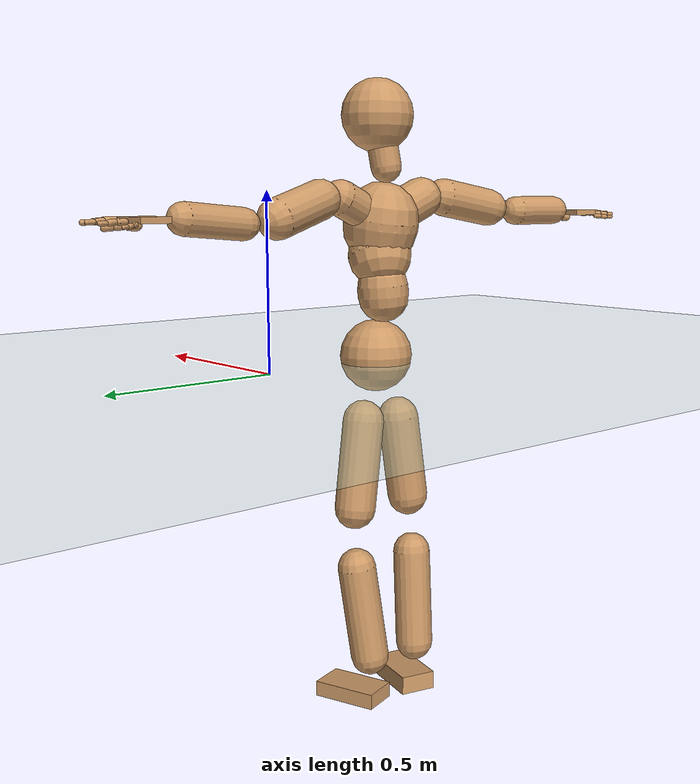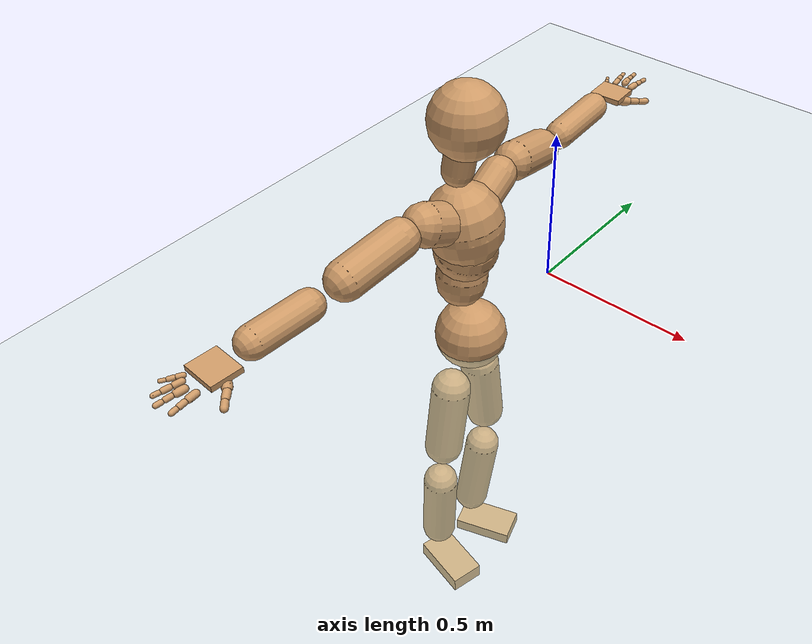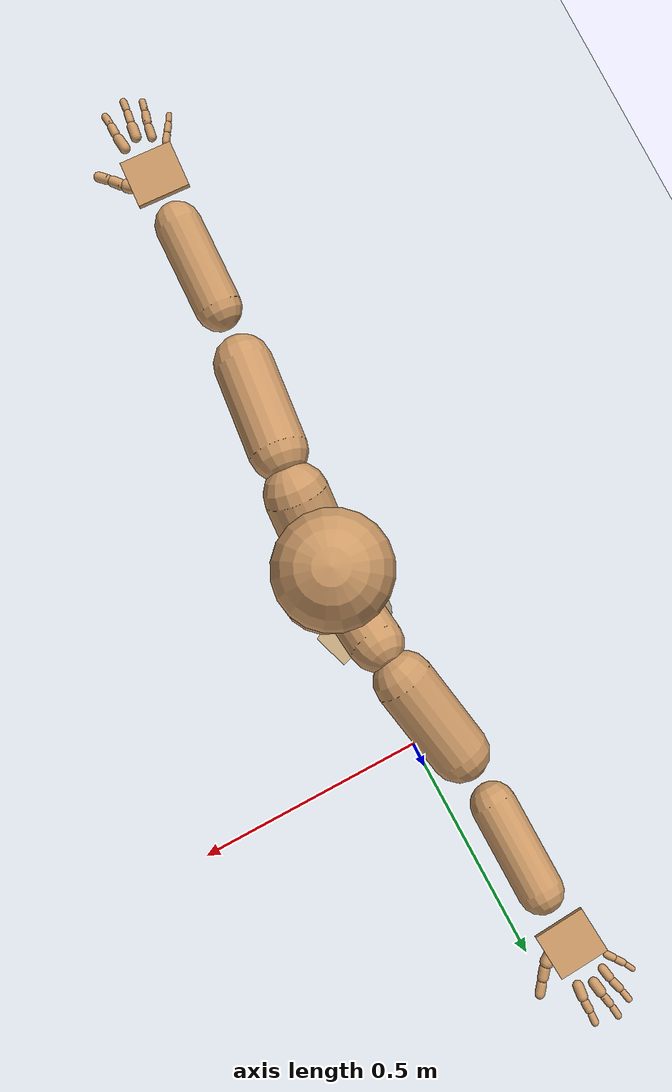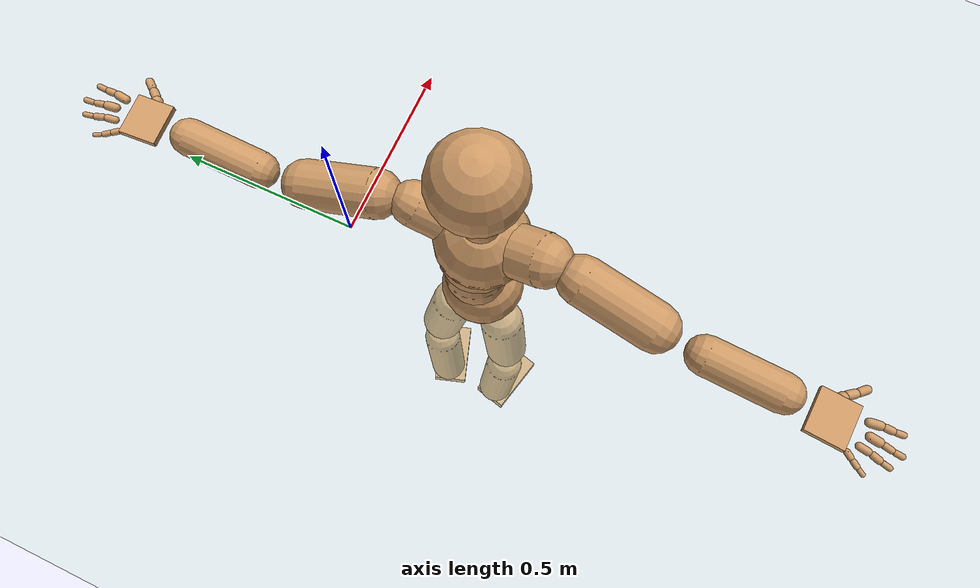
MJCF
<mujoco model="humanoid">
  <compiler coordinate="local" angle="radian"/>
  <default>
    <joint damping="0.0" armature="0.01" stiffness="0.0" limited="true"/>
    <geom conaffinity="1" condim="3" contype="7" margin="0.001" rgba="0.8 0.6 .4 1"/>
  </default>
  <asset>
    <texture type="skybox" builtin="gradient" rgb1=".4 .5 .6" rgb2="0 0 0" width="100" height="100"/>
    <texture builtin="flat" height="1278" mark="cross" markrgb="1 1 1" name="texgeom" random="0.01" rgb1="0.8 0.6 0.4" rgb2="0.8 0.6 0.4" type="cube" width="127"/>
    <texture builtin="checker" height="100" name="texplane" rgb1="0 0 0" rgb2="0.8 0.8 0.8" type="2d" width="100"/>
    <material name="MatPlane" reflectance="0.5" shininess="1" specular="1" texrepeat="60 60" texture="texplane"/>
    <material name="geom" texture="texgeom" texuniform="true"/>
  </asset>
  <worldbody>
    <light cutoff="100" diffuse="1 1 1" dir="-0 0 -1.3" directional="true" exponent="1" pos="0 0 1.3" specular=".1 .1 .1"/>
    <geom conaffinity="1" condim="3" name="floor" pos="0 0 0" rgba="0.8 0.9 0.8 1" size="100 100 .2" type="plane" material="MatPlane"/>
    <body name="Pelvis" pos="0.0012 -0.3872 0.0188">
      <freejoint name="Pelvis"/>
      <geom type="sphere" contype="1" conaffinity="1" density="500" size="0.1069" pos="0.0000 0.0000 0.0000" name="Pelvis"/>
      <body name="L_Hip" pos="-0.0232 0.0587 -0.0991">
        <joint name="L_Hip_x" type="hinge" pos="0 0 0" axis="1 0 0" stiffness="800" damping="80" armature="0.02" range="-180.0000 180.0000"/>
        <joint name="L_Hip_y" type="hinge" pos="0 0 0" axis="0 1 0" stiffness="800" damping="80" armature="0.02" range="-180.0000 180.0000"/>
        <joint name="L_Hip_z" type="hinge" pos="0 0 0" axis="0 0 1" stiffness="800" damping="80" armature="0.02" range="-180.0000 180.0000"/>
        <geom type="capsule" contype="1" conaffinity="1" density="500" fromto="-0.0024 0.0131 -0.0864 -0.0097 0.0526 -0.3455" size="0.0607" name="L_Hip"/>
        <body name="L_Knee" pos="-0.0121 0.0657 -0.4319">
          <joint name="L_Knee_x" type="hinge" pos="0 0 0" axis="1 0 0" stiffness="800" damping="80" armature="0.02" range="-180.0000 180.0000"/>
          <joint name="L_Knee_y" type="hinge" pos="0 0 0" axis="0 1 0" stiffness="800" damping="80" armature="0.02" range="-180.0000 180.0000"/>
          <joint name="L_Knee_z" type="hinge" pos="0 0 0" axis="0 0 1" stiffness="800" damping="80" armature="0.02" range="-180.0000 180.0000"/>
          <geom type="capsule" contype="1" conaffinity="1" density="500" fromto="-0.0087 -0.0093 -0.0926 -0.0347 -0.0372 -0.3702" size="0.0566" name="L_Knee"/>
          <body name="L_Ankle" pos="-0.0434 -0.0465 -0.4628">
            <joint name="L_Ankle_x" type="hinge" pos="0 0 0" axis="1 0 0" stiffness="800" damping="80" armature="0.02" range="-180.0000 180.0000"/>
            <joint name="L_Ankle_y" type="hinge" pos="0 0 0" axis="0 1 0" stiffness="800" damping="80" armature="0.02" range="-180.0000 180.0000"/>
            <joint name="L_Ankle_z" type="hinge" pos="0 0 0" axis="0 0 1" stiffness="800" damping="80" armature="0.02" range="-180.0000 180.0000"/>
            <geom type="box" contype="1" conaffinity="1" density="500" pos="0.0721 0.0234 -0.0340" size="0.0984 0.0545 0.0229" quat="0.9877 0.0000 0.0000 0.1563" name="L_Ankle"/>
            <body name="L_Toe" pos="0.1441 0.0468 -0.068">
              <joint name="L_Toe_x" type="hinge" pos="0 0 0" axis="1 0 0" stiffness="500" damping="50" armature="0.02" range="-180.0000 180.0000"/>
              <joint name="L_Toe_y" type="hinge" pos="0 0 0" axis="0 1 0" stiffness="500" damping="50" armature="0.02" range="-180.0000 180.0000"/>
              <joint name="L_Toe_z" type="hinge" pos="0 0 0" axis="0 0 1" stiffness="500" damping="50" armature="0.02" range="-180.0000 180.0000"/>
              <geom type="box" contype="1" conaffinity="1" density="500" pos="0.0000 0.0000 0.0331" size="0.0011 0.0026 0.0011" quat="0.9871 0.0000 0.0000 0.1604" name="L_Toe"/>
            </body>
          </body>
        </body>
      </body>
      <body name="R_Hip" pos="-0.0172 -0.0602 -0.1098">
        <joint name="R_Hip_x" type="hinge" pos="0 0 0" axis="1 0 0" stiffness="800" damping="80" armature="0.02" range="-180.0000 180.0000"/>
        <joint name="R_Hip_y" type="hinge" pos="0 0 0" axis="0 1 0" stiffness="800" damping="80" armature="0.02" range="-180.0000 180.0000"/>
        <joint name="R_Hip_z" type="hinge" pos="0 0 0" axis="0 0 1" stiffness="800" damping="80" armature="0.02" range="-180.0000 180.0000"/>
        <geom type="capsule" contype="1" conaffinity="1" density="500" fromto="-0.0039 -0.0098 -0.0827 -0.0154 -0.0392 -0.3308" size="0.0603" name="R_Hip"/>
        <body name="R_Knee" pos="-0.0193 -0.0491 -0.4135">
          <joint name="R_Knee_x" type="hinge" pos="0 0 0" axis="1 0 0" stiffness="800" damping="80" armature="0.02" range="-180.0000 180.0000"/>
          <joint name="R_Knee_y" type="hinge" pos="0 0 0" axis="0 1 0" stiffness="800" damping="80" armature="0.02" range="-180.0000 180.0000"/>
          <joint name="R_Knee_z" type="hinge" pos="0 0 0" axis="0 0 1" stiffness="800" damping="80" armature="0.02" range="-180.0000 180.0000"/>
          <geom type="capsule" contype="1" conaffinity="1" density="500" fromto="-0.0083 0.0035 -0.0957 -0.0332 0.0138 -0.3826" size="0.0562" name="R_Knee"/>
          <body name="R_Ankle" pos="-0.0415 0.0173 -0.4783">
            <joint name="R_Ankle_x" type="hinge" pos="0 0 0" axis="1 0 0" stiffness="800" damping="80" armature="0.02" range="-180.0000 180.0000"/>
            <joint name="R_Ankle_y" type="hinge" pos="0 0 0" axis="0 1 0" stiffness="800" damping="80" armature="0.02" range="-180.0000 180.0000"/>
            <joint name="R_Ankle_z" type="hinge" pos="0 0 0" axis="0 0 1" stiffness="800" damping="80" armature="0.02" range="-180.0000 180.0000"/>
            <geom type="box" contype="1" conaffinity="1" density="500" pos="0.0754 -0.0187 -0.0332" size="0.0984 0.0545 0.0276" quat="0.9926 0.0000 0.0000 -0.1213" name="R_Ankle"/>
            <body name="R_Toe" pos="0.1508 -0.0374 -0.0663">
              <joint name="R_Toe_x" type="hinge" pos="0 0 0" axis="1 0 0" stiffness="500" damping="50" armature="0.02" range="-180.0000 180.0000"/>
              <joint name="R_Toe_y" type="hinge" pos="0 0 0" axis="0 1 0" stiffness="500" damping="50" armature="0.02" range="-180.0000 180.0000"/>
              <joint name="R_Toe_z" type="hinge" pos="0 0 0" axis="0 0 1" stiffness="500" damping="50" armature="0.02" range="-180.0000 180.0000"/>
              <geom type="box" contype="1" conaffinity="1" density="500" pos="0.0000 0.0000 0.0276" size="0.001 0.0026 0.0011" quat="0.9935 0.0000 0.0000 -0.1137" name="R_Toe"/>
            </body>
          </body>
        </body>
      </body>
      <body name="Torso" pos="-0.0397 -0.0013 0.1154">
        <joint name="Torso_x" type="hinge" pos="0 0 0" axis="1 0 0" stiffness="1000" damping="100" armature="0.02" range="-180.0000 180.0000"/>
        <joint name="Torso_y" type="hinge" pos="0 0 0" axis="0 1 0" stiffness="1000" damping="100" armature="0.02" range="-180.0000 180.0000"/>
        <joint name="Torso_z" type="hinge" pos="0 0 0" axis="0 0 1" stiffness="1000" damping="100" armature="0.02" range="-180.0000 180.0000"/>
        <geom type="capsule" contype="1" conaffinity="1" density="500" fromto="0.0034 0.0067 0.0934 0.0023 0.0045 0.0623" size="0.0747" name="Torso"/>
        <body name="Spine" pos="0.0057 0.0112 0.1557">
          <joint name="Spine_x" type="hinge" pos="0 0 0" axis="1 0 0" stiffness="1000" damping="100" armature="0.02" range="-180.0000 180.0000"/>
          <joint name="Spine_y" type="hinge" pos="0 0 0" axis="0 1 0" stiffness="1000" damping="100" armature="0.02" range="-180.0000 180.0000"/>
          <joint name="Spine_z" type="hinge" pos="0 0 0" axis="0 0 1" stiffness="1000" damping="100" armature="0.02" range="-180.0000 180.0000"/>
          <geom type="capsule" contype="1" conaffinity="1" density="500" fromto="0.0143 -0.0060 0.0354 0.0095 -0.0040 0.0236" size="0.0924" name="Spine"/>
          <body name="Chest" pos="0.0239 -0.01 0.0589">
            <joint name="Chest_x" type="hinge" pos="0 0 0" axis="1 0 0" stiffness="1000" damping="100" armature="0.02" range="-180.0000 180.0000"/>
            <joint name="Chest_y" type="hinge" pos="0 0 0" axis="0 1 0" stiffness="1000" damping="100" armature="0.02" range="-180.0000 180.0000"/>
            <joint name="Chest_z" type="hinge" pos="0 0 0" axis="0 0 1" stiffness="1000" damping="100" armature="0.02" range="-180.0000 180.0000"/>
            <geom type="capsule" contype="1" conaffinity="1" density="500" fromto="-0.0111 -0.0027 0.0693 -0.0074 -0.0018 0.0462" size="0.1097" name="Chest"/>
            <body name="Neck" pos="-0.0339 -0.0095 0.182">
              <joint name="Neck_x" type="hinge" pos="0 0 0" axis="1 0 0" stiffness="500" damping="50" armature="0.02" range="-180.0000 180.0000"/>
              <joint name="Neck_y" type="hinge" pos="0 0 0" axis="0 1 0" stiffness="500" damping="50" armature="0.02" range="-180.0000 180.0000"/>
              <joint name="Neck_z" type="hinge" pos="0 0 0" axis="0 0 1" stiffness="500" damping="50" armature="0.02" range="-180.0000 180.0000"/>
              <geom type="capsule" contype="1" conaffinity="1" density="500" fromto="0.0042 0.0045 0.0361 0.0166 0.0181 0.1445" size="0.0444" name="Neck"/>
              <body name="Head" pos="0.0208 0.0226 0.1806">
                <joint name="Head_x" type="hinge" pos="0 0 0" axis="1 0 0" stiffness="500" damping="50" armature="0.02" range="-180.0000 180.0000"/>
                <joint name="Head_y" type="hinge" pos="0 0 0" axis="0 1 0" stiffness="500" damping="50" armature="0.02" range="-180.0000 180.0000"/>
                <joint name="Head_z" type="hinge" pos="0 0 0" axis="0 0 1" stiffness="500" damping="50" armature="0.02" range="-180.0000 180.0000"/>
                <geom type="sphere" contype="1" conaffinity="1" density="500" size="0.1041" pos="0.0000 0.0000 0.0000" name="Head"/>
              </body>
            </body>
            <body name="L_Thorax" pos="-0.0094 0.0427 0.0819">
              <joint name="L_Thorax_x" type="hinge" pos="0 0 0" axis="1 0 0" stiffness="500" damping="50" armature="0.02" range="-180.0000 180.0000"/>
              <joint name="L_Thorax_y" type="hinge" pos="0 0 0" axis="0 1 0" stiffness="500" damping="50" armature="0.02" range="-180.0000 180.0000"/>
              <joint name="L_Thorax_z" type="hinge" pos="0 0 0" axis="0 0 1" stiffness="500" damping="50" armature="0.02" range="-180.0000 180.0000"/>
              <geom type="capsule" contype="1" conaffinity="1" density="500" fromto="-0.0026 0.0281 0.0122 -0.0104 0.1125 0.0487" size="0.0518" name="L_Thorax"/>
              <body name="L_Shoulder" pos="-0.013 0.1406 0.0609">
                <joint name="L_Shoulder_x" type="hinge" pos="0 0 0" axis="1 0 0" stiffness="500" damping="50" armature="0.02" range="-180.0000 180.0000"/>
                <joint name="L_Shoulder_y" type="hinge" pos="0 0 0" axis="0 1 0" stiffness="500" damping="50" armature="0.02" range="-180.0000 180.0000"/>
                <joint name="L_Shoulder_z" type="hinge" pos="0 0 0" axis="0 0 1" stiffness="500" damping="50" armature="0.02" range="-180.0000 180.0000"/>
                <geom type="capsule" contype="1" conaffinity="1" density="500" fromto="-0.0093 0.0549 -0.0164 -0.0371 0.2196 -0.0657" size="0.0566" name="L_Shoulder"/>
                <body name="L_Elbow" pos="-0.0464 0.2745 -0.0822">
                  <joint name="L_Elbow_x" type="hinge" pos="0 0 0" axis="1 0 0" stiffness="500" damping="50" armature="0.02" range="-720.0000 720.0000"/>
                  <joint name="L_Elbow_y" type="hinge" pos="0 0 0" axis="0 1 0" stiffness="500" damping="50" armature="0.02" range="-720.0000 720.0000"/>
                  <joint name="L_Elbow_z" type="hinge" pos="0 0 0" axis="0 0 1" stiffness="500" damping="50" armature="0.02" range="-720.0000 720.0000"/>
                  <geom type="capsule" contype="1" conaffinity="1" density="500" fromto="-0.0002 0.0591 0.0052 -0.0006 0.2362 0.0209" size="0.043" name="L_Elbow"/>
                  <body name="L_Wrist" pos="-0.0008 0.2953 0.0261">
                    <joint name="L_Wrist_x" type="hinge" pos="0 0 0" axis="1 0 0" stiffness="300" damping="30" armature="0.02" range="-180.0000 180.0000"/>
                    <joint name="L_Wrist_y" type="hinge" pos="0 0 0" axis="0 1 0" stiffness="300" damping="30" armature="0.02" range="-180.0000 180.0000"/>
                    <joint name="L_Wrist_z" type="hinge" pos="0 0 0" axis="0 0 1" stiffness="300" damping="30" armature="0.02" range="-180.0000 180.0000"/>
                    <geom type="box" contype="1" conaffinity="1" density="500" pos="-0.0033 0.0496 -0.0061" size="0.0442 0.0493 0.0082" quat="0.7299 0.0000 0.0000 -0.6836" name="L_Wrist"/>
                    <body name="L_Index1" pos="0.0218 0.1159 -0.0089">
                      <joint name="L_Index1_x" type="hinge" pos="0 0 0" axis="1 0 0" stiffness="100" damping="10" armature="0.02" range="-180.0000 180.0000"/>
                      <joint name="L_Index1_y" type="hinge" pos="0 0 0" axis="0 1 0" stiffness="100" damping="10" armature="0.02" range="-180.0000 180.0000"/>
                      <joint name="L_Index1_z" type="hinge" pos="0 0 0" axis="0 0 1" stiffness="100" damping="10" armature="0.02" range="-180.0000 180.0000"/>
                      <geom type="capsule" contype="1" conaffinity="1" density="500" fromto="0.0007 0.0069 0.0003 0.0030 0.0278 0.0014" size="0.0099" name="L_Index1"/>
                      <body name="L_Index2" pos="0.0037 0.0347 0.0017">
                        <joint name="L_Index2_x" type="hinge" pos="0 0 0" axis="1 0 0" stiffness="100" damping="10" armature="0.02" range="-180.0000 180.0000"/>
                        <joint name="L_Index2_y" type="hinge" pos="0 0 0" axis="0 1 0" stiffness="100" damping="10" armature="0.02" range="-180.0000 180.0000"/>
                        <joint name="L_Index2_z" type="hinge" pos="0 0 0" axis="0 0 1" stiffness="100" damping="10" armature="0.02" range="-180.0000 180.0000"/>
                        <geom type="capsule" contype="1" conaffinity="1" density="500" fromto="-0.0000 0.0049 -0.0005 -0.0001 0.0196 -0.0021" size="0.0081" name="L_Index2"/>
                        <body name="L_Index3" pos="-0.0001 0.0245 -0.0027">
                          <joint name="L_Index3_x" type="hinge" pos="0 0 0" axis="1 0 0" stiffness="100" damping="10" armature="0.02" range="-180.0000 180.0000"/>
                          <joint name="L_Index3_y" type="hinge" pos="0 0 0" axis="0 1 0" stiffness="100" damping="10" armature="0.02" range="-180.0000 180.0000"/>
                          <joint name="L_Index3_z" type="hinge" pos="0 0 0" axis="0 0 1" stiffness="100" damping="10" armature="0.02" range="-180.0000 180.0000"/>
                          <geom type="capsule" contype="1" conaffinity="1" density="500" fromto="0.0004 0.0053 -0.0001 0.0015 0.0212 -0.0005" size="0.0069" name="L_Index3"/>
                        </body>
                      </body>
                    </body>
                    <body name="L_Middle1" pos="-0.0045 0.1244 -0.0061">
                      <joint name="L_Middle1_x" type="hinge" pos="0 0 0" axis="1 0 0" stiffness="100" damping="10" armature="0.02" range="-180.0000 180.0000"/>
                      <joint name="L_Middle1_y" type="hinge" pos="0 0 0" axis="0 1 0" stiffness="100" damping="10" armature="0.02" range="-180.0000 180.0000"/>
                      <joint name="L_Middle1_z" type="hinge" pos="0 0 0" axis="0 0 1" stiffness="100" damping="10" armature="0.02" range="-180.0000 180.0000"/>
                      <geom type="capsule" contype="1" conaffinity="1" density="500" fromto="-0.0010 0.0066 0.0001 -0.0039 0.0265 0.0003" size="0.0101" name="L_Middle1"/>
                      <body name="L_Middle2" pos="-0.0048 0.0331 0.0004">
                        <joint name="L_Middle2_x" type="hinge" pos="0 0 0" axis="1 0 0" stiffness="100" damping="10" armature="0.02" range="-180.0000 180.0000"/>
                        <joint name="L_Middle2_y" type="hinge" pos="0 0 0" axis="0 1 0" stiffness="100" damping="10" armature="0.02" range="-180.0000 180.0000"/>
                        <joint name="L_Middle2_z" type="hinge" pos="0 0 0" axis="0 0 1" stiffness="100" damping="10" armature="0.02" range="-180.0000 180.0000"/>
                        <geom type="capsule" contype="1" conaffinity="1" density="500" fromto="-0.0009 0.0051 -0.0005 -0.0037 0.0204 -0.0021" size="0.0075" name="L_Middle2"/>
                        <body name="L_Middle3" pos="-0.0046 0.0254 -0.0026">
                          <joint name="L_Middle3_x" type="hinge" pos="0 0 0" axis="1 0 0" stiffness="100" damping="10" armature="0.02" range="-180.0000 180.0000"/>
                          <joint name="L_Middle3_y" type="hinge" pos="0 0 0" axis="0 1 0" stiffness="100" damping="10" armature="0.02" range="-180.0000 180.0000"/>
                          <joint name="L_Middle3_z" type="hinge" pos="0 0 0" axis="0 0 1" stiffness="100" damping="10" armature="0.02" range="-180.0000 180.0000"/>
                          <geom type="capsule" contype="1" conaffinity="1" density="500" fromto="-0.0005 0.0055 -0.0001 -0.0021 0.0220 -0.0005" size="0.0066" name="L_Middle3"/>
                        </body>
                      </body>
                    </body>
                    <body name="L_Pinky1" pos="-0.0484 0.0969 -0.0156">
                      <joint name="L_Pinky1_x" type="hinge" pos="0 0 0" axis="1 0 0" stiffness="100" damping="10" armature="0.02" range="-180.0000 180.0000"/>
                      <joint name="L_Pinky1_y" type="hinge" pos="0 0 0" axis="0 1 0" stiffness="100" damping="10" armature="0.02" range="-180.0000 180.0000"/>
                      <joint name="L_Pinky1_z" type="hinge" pos="0 0 0" axis="0 0 1" stiffness="100" damping="10" armature="0.02" range="-180.0000 180.0000"/>
                      <geom type="capsule" contype="1" conaffinity="1" density="500" fromto="-0.0025 0.0035 -0.0004 -0.0099 0.0141 -0.0014" size="0.0071" name="L_Pinky1"/>
                      <body name="L_Pinky2" pos="-0.0124 0.0176 -0.0018">
                        <joint name="L_Pinky2_x" type="hinge" pos="0 0 0" axis="1 0 0" stiffness="100" damping="10" armature="0.02" range="-180.0000 180.0000"/>
                        <joint name="L_Pinky2_y" type="hinge" pos="0 0 0" axis="0 1 0" stiffness="100" damping="10" armature="0.02" range="-180.0000 180.0000"/>
                        <joint name="L_Pinky2_z" type="hinge" pos="0 0 0" axis="0 0 1" stiffness="100" damping="10" armature="0.02" range="-180.0000 180.0000"/>
                        <geom type="capsule" contype="1" conaffinity="1" density="500" fromto="-0.0023 0.0034 -0.0004 -0.0093 0.0137 -0.0017" size="0.0067" name="L_Pinky2"/>
                        <body name="L_Pinky3" pos="-0.0116 0.0172 -0.0021">
                          <joint name="L_Pinky3_x" type="hinge" pos="0 0 0" axis="1 0 0" stiffness="100" damping="10" armature="0.02" range="-180.0000 180.0000"/>
                          <joint name="L_Pinky3_y" type="hinge" pos="0 0 0" axis="0 1 0" stiffness="100" damping="10" armature="0.02" range="-180.0000 180.0000"/>
                          <joint name="L_Pinky3_z" type="hinge" pos="0 0 0" axis="0 0 1" stiffness="100" damping="10" armature="0.02" range="-180.0000 180.0000"/>
                          <geom type="capsule" contype="1" conaffinity="1" density="500" fromto="-0.0019 0.0038 -0.0000 -0.0077 0.0153 -0.0001" size="0.0051" name="L_Pinky3"/>
                        </body>
                      </body>
                    </body>
                    <body name="L_Ring1" pos="-0.0305 0.1115 -0.0094">
                      <joint name="L_Ring1_x" type="hinge" pos="0 0 0" axis="1 0 0" stiffness="100" damping="10" armature="0.02" range="-180.0000 180.0000"/>
                      <joint name="L_Ring1_y" type="hinge" pos="0 0 0" axis="0 1 0" stiffness="100" damping="10" armature="0.02" range="-180.0000 180.0000"/>
                      <joint name="L_Ring1_z" type="hinge" pos="0 0 0" axis="0 0 1" stiffness="100" damping="10" armature="0.02" range="-180.0000 180.0000"/>
                      <geom type="capsule" contype="1" conaffinity="1" density="500" fromto="-0.0011 0.0062 0.0002 -0.0043 0.0248 0.0007" size="0.0085" name="L_Ring1"/>
                      <body name="L_Ring2" pos="-0.0054 0.031 0.0008">
                        <joint name="L_Ring2_x" type="hinge" pos="0 0 0" axis="1 0 0" stiffness="100" damping="10" armature="0.02" range="-180.0000 180.0000"/>
                        <joint name="L_Ring2_y" type="hinge" pos="0 0 0" axis="0 1 0" stiffness="100" damping="10" armature="0.02" range="-180.0000 180.0000"/>
                        <joint name="L_Ring2_z" type="hinge" pos="0 0 0" axis="0 0 1" stiffness="100" damping="10" armature="0.02" range="-180.0000 180.0000"/>
                        <geom type="capsule" contype="1" conaffinity="1" density="500" fromto="-0.0014 0.0050 -0.0005 -0.0058 0.0200 -0.0019" size="0.008" name="L_Ring2"/>
                        <body name="L_Ring3" pos="-0.0072 0.025 -0.0024">
                          <joint name="L_Ring3_x" type="hinge" pos="0 0 0" axis="1 0 0" stiffness="100" damping="10" armature="0.02" range="-180.0000 180.0000"/>
                          <joint name="L_Ring3_y" type="hinge" pos="0 0 0" axis="0 1 0" stiffness="100" damping="10" armature="0.02" range="-180.0000 180.0000"/>
                          <joint name="L_Ring3_z" type="hinge" pos="0 0 0" axis="0 0 1" stiffness="100" damping="10" armature="0.02" range="-180.0000 180.0000"/>
                          <geom type="capsule" contype="1" conaffinity="1" density="500" fromto="-0.0010 0.0054 -0.0001 -0.0042 0.0216 -0.0003" size="0.0062" name="L_Ring3"/>
                        </body>
                      </body>
                    </body>
                    <body name="L_Thumb1" pos="0.029 0.0471 -0.0207">
                      <joint name="L_Thumb1_x" type="hinge" pos="0 0 0" axis="1 0 0" stiffness="100" damping="10" armature="0.02" range="-180.0000 180.0000"/>
                      <joint name="L_Thumb1_y" type="hinge" pos="0 0 0" axis="0 1 0" stiffness="100" damping="10" armature="0.02" range="-180.0000 180.0000"/>
                      <joint name="L_Thumb1_z" type="hinge" pos="0 0 0" axis="0 0 1" stiffness="100" damping="10" armature="0.02" range="-180.0000 180.0000"/>
                      <geom type="capsule" contype="1" conaffinity="1" density="500" fromto="0.0057 0.0037 0.0003 0.0226 0.0149 0.0012" size="0.0133" name="L_Thumb1"/>
                      <body name="L_Thumb2" pos="0.0283 0.0186 0.0016">
                        <joint name="L_Thumb2_x" type="hinge" pos="0 0 0" axis="1 0 0" stiffness="100" damping="10" armature="0.02" range="-180.0000 180.0000"/>
                        <joint name="L_Thumb2_y" type="hinge" pos="0 0 0" axis="0 1 0" stiffness="100" damping="10" armature="0.02" range="-180.0000 180.0000"/>
                        <joint name="L_Thumb2_z" type="hinge" pos="0 0 0" axis="0 0 1" stiffness="100" damping="10" armature="0.02" range="-180.0000 180.0000"/>
                        <geom type="capsule" contype="1" conaffinity="1" density="500" fromto="0.0035 0.0045 -0.0009 0.0141 0.0181 -0.0036" size="0.0104" name="L_Thumb2"/>
                        <body name="L_Thumb3" pos="0.0177 0.0226 -0.0045">
                          <joint name="L_Thumb3_x" type="hinge" pos="0 0 0" axis="1 0 0" stiffness="100" damping="10" armature="0.02" range="-180.0000 180.0000"/>
                          <joint name="L_Thumb3_y" type="hinge" pos="0 0 0" axis="0 1 0" stiffness="100" damping="10" armature="0.02" range="-180.0000 180.0000"/>
                          <joint name="L_Thumb3_z" type="hinge" pos="0 0 0" axis="0 0 1" stiffness="100" damping="10" armature="0.02" range="-180.0000 180.0000"/>
                          <geom type="capsule" contype="1" conaffinity="1" density="500" fromto="0.0039 0.0049 -0.0005 0.0157 0.0197 -0.0020" size="0.0095" name="L_Thumb3"/>
                        </body>
                      </body>
                    </body>
                  </body>
                </body>
              </body>
            </body>
            <body name="R_Thorax" pos="-0.0121 -0.0465 0.0824">
              <joint name="R_Thorax_x" type="hinge" pos="0 0 0" axis="1 0 0" stiffness="500" damping="50" armature="0.02" range="-180.0000 180.0000"/>
              <joint name="R_Thorax_y" type="hinge" pos="0 0 0" axis="0 1 0" stiffness="500" damping="50" armature="0.02" range="-180.0000 180.0000"/>
              <joint name="R_Thorax_z" type="hinge" pos="0 0 0" axis="0 0 1" stiffness="500" damping="50" armature="0.02" range="-180.0000 180.0000"/>
              <geom type="capsule" contype="1" conaffinity="1" density="500" fromto="-0.0022 -0.0259 0.0120 -0.0087 -0.1036 0.0481" size="0.0608" name="R_Thorax"/>
              <body name="R_Shoulder" pos="-0.0109 -0.1295 0.0601">
                <joint name="R_Shoulder_x" type="hinge" pos="0 0 0" axis="1 0 0" stiffness="500" damping="50" armature="0.02" range="-180.0000 180.0000"/>
                <joint name="R_Shoulder_y" type="hinge" pos="0 0 0" axis="0 1 0" stiffness="500" damping="50" armature="0.02" range="-180.0000 180.0000"/>
                <joint name="R_Shoulder_z" type="hinge" pos="0 0 0" axis="0 0 1" stiffness="500" damping="50" armature="0.02" range="-180.0000 180.0000"/>
                <geom type="capsule" contype="1" conaffinity="1" density="500" fromto="-0.0066 -0.0588 -0.0104 -0.0266 -0.2353 -0.0418" size="0.0556" name="R_Shoulder"/>
                <body name="R_Elbow" pos="-0.0332 -0.2941 -0.0522">
                  <joint name="R_Elbow_x" type="hinge" pos="0 0 0" axis="1 0 0" stiffness="500" damping="50" armature="0.02" range="-720.0000 720.0000"/>
                  <joint name="R_Elbow_y" type="hinge" pos="0 0 0" axis="0 1 0" stiffness="500" damping="50" armature="0.02" range="-720.0000 720.0000"/>
                  <joint name="R_Elbow_z" type="hinge" pos="0 0 0" axis="0 0 1" stiffness="500" damping="50" armature="0.02" range="-720.0000 720.0000"/>
                  <geom type="capsule" contype="1" conaffinity="1" density="500" fromto="-0.0025 -0.0571 0.0001 -0.0101 -0.2285 0.0003" size="0.0442" name="R_Elbow"/>
                  <body name="R_Wrist" pos="-0.0126 -0.2856 0.0003">
                    <joint name="R_Wrist_x" type="hinge" pos="0 0 0" axis="1 0 0" stiffness="300" damping="30" armature="0.02" range="-180.0000 180.0000"/>
                    <joint name="R_Wrist_y" type="hinge" pos="0 0 0" axis="0 1 0" stiffness="300" damping="30" armature="0.02" range="-180.0000 180.0000"/>
                    <joint name="R_Wrist_z" type="hinge" pos="0 0 0" axis="0 0 1" stiffness="300" damping="30" armature="0.02" range="-180.0000 180.0000"/>
                    <geom type="box" contype="1" conaffinity="1" density="500" pos="-0.0036 -0.0493 -0.0080" size="0.0442 0.0507 0.0083" quat="0.7327 0.0000 0.0000 0.6805" name="R_Wrist"/>
                    <body name="R_Index1" pos="0.021 -0.1153 -0.0127">
                      <joint name="R_Index1_x" type="hinge" pos="0 0 0" axis="1 0 0" stiffness="100" damping="10" armature="0.02" range="-180.0000 180.0000"/>
                      <joint name="R_Index1_y" type="hinge" pos="0 0 0" axis="0 1 0" stiffness="100" damping="10" armature="0.02" range="-180.0000 180.0000"/>
                      <joint name="R_Index1_z" type="hinge" pos="0 0 0" axis="0 0 1" stiffness="100" damping="10" armature="0.02" range="-180.0000 180.0000"/>
                      <geom type="capsule" contype="1" conaffinity="1" density="500" fromto="0.0007 -0.0069 0.0003 0.0030 -0.0278 0.0014" size="0.0099" name="R_Index1"/>
                      <body name="R_Index2" pos="0.0037 -0.0347 0.0017">
                        <joint name="R_Index2_x" type="hinge" pos="0 0 0" axis="1 0 0" stiffness="100" damping="10" armature="0.02" range="-180.0000 180.0000"/>
                        <joint name="R_Index2_y" type="hinge" pos="0 0 0" axis="0 1 0" stiffness="100" damping="10" armature="0.02" range="-180.0000 180.0000"/>
                        <joint name="R_Index2_z" type="hinge" pos="0 0 0" axis="0 0 1" stiffness="100" damping="10" armature="0.02" range="-180.0000 180.0000"/>
                        <geom type="capsule" contype="1" conaffinity="1" density="500" fromto="-0.0000 -0.0049 -0.0005 -0.0001 -0.0196 -0.0021" size="0.0081" name="R_Index2"/>
                        <body name="R_Index3" pos="-0.0001 -0.0245 -0.0027">
                          <joint name="R_Index3_x" type="hinge" pos="0 0 0" axis="1 0 0" stiffness="100" damping="10" armature="0.02" range="-180.0000 180.0000"/>
                          <joint name="R_Index3_y" type="hinge" pos="0 0 0" axis="0 1 0" stiffness="100" damping="10" armature="0.02" range="-180.0000 180.0000"/>
                          <joint name="R_Index3_z" type="hinge" pos="0 0 0" axis="0 0 1" stiffness="100" damping="10" armature="0.02" range="-180.0000 180.0000"/>
                          <geom type="capsule" contype="1" conaffinity="1" density="500" fromto="0.0004 -0.0045 -0.0001 0.0015 -0.0180 -0.0005" size="0.0072" name="R_Index3"/>
                        </body>
                      </body>
                    </body>
                    <body name="R_Middle1" pos="-0.0053 -0.1238 -0.0099">
                      <joint name="R_Middle1_x" type="hinge" pos="0 0 0" axis="1 0 0" stiffness="100" damping="10" armature="0.02" range="-180.0000 180.0000"/>
                      <joint name="R_Middle1_y" type="hinge" pos="0 0 0" axis="0 1 0" stiffness="100" damping="10" armature="0.02" range="-180.0000 180.0000"/>
                      <joint name="R_Middle1_z" type="hinge" pos="0 0 0" axis="0 0 1" stiffness="100" damping="10" armature="0.02" range="-180.0000 180.0000"/>
                      <geom type="capsule" contype="1" conaffinity="1" density="500" fromto="-0.0010 -0.0066 0.0001 -0.0039 -0.0265 0.0003" size="0.0101" name="R_Middle1"/>
                      <body name="R_Middle2" pos="-0.0048 -0.0331 0.0004">
                        <joint name="R_Middle2_x" type="hinge" pos="0 0 0" axis="1 0 0" stiffness="100" damping="10" armature="0.02" range="-180.0000 180.0000"/>
                        <joint name="R_Middle2_y" type="hinge" pos="0 0 0" axis="0 1 0" stiffness="100" damping="10" armature="0.02" range="-180.0000 180.0000"/>
                        <joint name="R_Middle2_z" type="hinge" pos="0 0 0" axis="0 0 1" stiffness="100" damping="10" armature="0.02" range="-180.0000 180.0000"/>
                        <geom type="capsule" contype="1" conaffinity="1" density="500" fromto="-0.0009 -0.0051 -0.0005 -0.0037 -0.0204 -0.0021" size="0.0075" name="R_Middle2"/>
                        <body name="R_Middle3" pos="-0.0046 -0.0254 -0.0026">
                          <joint name="R_Middle3_x" type="hinge" pos="0 0 0" axis="1 0 0" stiffness="100" damping="10" armature="0.02" range="-180.0000 180.0000"/>
                          <joint name="R_Middle3_y" type="hinge" pos="0 0 0" axis="0 1 0" stiffness="100" damping="10" armature="0.02" range="-180.0000 180.0000"/>
                          <joint name="R_Middle3_z" type="hinge" pos="0 0 0" axis="0 0 1" stiffness="100" damping="10" armature="0.02" range="-180.0000 180.0000"/>
                          <geom type="capsule" contype="1" conaffinity="1" density="500" fromto="-0.0005 -0.0047 -0.0001 -0.0021 -0.0188 -0.0005" size="0.0069" name="R_Middle3"/>
                        </body>
                      </body>
                    </body>
                    <body name="R_Pinky1" pos="-0.0492 -0.0962 -0.0194">
                      <joint name="R_Pinky1_x" type="hinge" pos="0 0 0" axis="1 0 0" stiffness="100" damping="10" armature="0.02" range="-180.0000 180.0000"/>
                      <joint name="R_Pinky1_y" type="hinge" pos="0 0 0" axis="0 1 0" stiffness="100" damping="10" armature="0.02" range="-180.0000 180.0000"/>
                      <joint name="R_Pinky1_z" type="hinge" pos="0 0 0" axis="0 0 1" stiffness="100" damping="10" armature="0.02" range="-180.0000 180.0000"/>
                      <geom type="capsule" contype="1" conaffinity="1" density="500" fromto="-0.0025 -0.0035 -0.0004 -0.0099 -0.0141 -0.0014" size="0.0071" name="R_Pinky1"/>
                      <body name="R_Pinky2" pos="-0.0124 -0.0176 -0.0018">
                        <joint name="R_Pinky2_x" type="hinge" pos="0 0 0" axis="1 0 0" stiffness="100" damping="10" armature="0.02" range="-180.0000 180.0000"/>
                        <joint name="R_Pinky2_y" type="hinge" pos="0 0 0" axis="0 1 0" stiffness="100" damping="10" armature="0.02" range="-180.0000 180.0000"/>
                        <joint name="R_Pinky2_z" type="hinge" pos="0 0 0" axis="0 0 1" stiffness="100" damping="10" armature="0.02" range="-180.0000 180.0000"/>
                        <geom type="capsule" contype="1" conaffinity="1" density="500" fromto="-0.0023 -0.0034 -0.0004 -0.0093 -0.0137 -0.0017" size="0.0067" name="R_Pinky2"/>
                        <body name="R_Pinky3" pos="-0.0116 -0.0172 -0.0021">
                          <joint name="R_Pinky3_x" type="hinge" pos="0 0 0" axis="1 0 0" stiffness="100" damping="10" armature="0.02" range="-180.0000 180.0000"/>
                          <joint name="R_Pinky3_y" type="hinge" pos="0 0 0" axis="0 1 0" stiffness="100" damping="10" armature="0.02" range="-180.0000 180.0000"/>
                          <joint name="R_Pinky3_z" type="hinge" pos="0 0 0" axis="0 0 1" stiffness="100" damping="10" armature="0.02" range="-180.0000 180.0000"/>
                          <geom type="capsule" contype="1" conaffinity="1" density="500" fromto="-0.0019 -0.0030 -0.0000 -0.0077 -0.0121 -0.0001" size="0.0054" name="R_Pinky3"/>
                        </body>
                      </body>
                    </body>
                    <body name="R_Ring1" pos="-0.0313 -0.1109 -0.0132">
                      <joint name="R_Ring1_x" type="hinge" pos="0 0 0" axis="1 0 0" stiffness="100" damping="10" armature="0.02" range="-180.0000 180.0000"/>
                      <joint name="R_Ring1_y" type="hinge" pos="0 0 0" axis="0 1 0" stiffness="100" damping="10" armature="0.02" range="-180.0000 180.0000"/>
                      <joint name="R_Ring1_z" type="hinge" pos="0 0 0" axis="0 0 1" stiffness="100" damping="10" armature="0.02" range="-180.0000 180.0000"/>
                      <geom type="capsule" contype="1" conaffinity="1" density="500" fromto="-0.0011 -0.0062 0.0002 -0.0043 -0.0248 0.0007" size="0.0085" name="R_Ring1"/>
                      <body name="R_Ring2" pos="-0.0054 -0.031 0.0008">
                        <joint name="R_Ring2_x" type="hinge" pos="0 0 0" axis="1 0 0" stiffness="100" damping="10" armature="0.02" range="-180.0000 180.0000"/>
                        <joint name="R_Ring2_y" type="hinge" pos="0 0 0" axis="0 1 0" stiffness="100" damping="10" armature="0.02" range="-180.0000 180.0000"/>
                        <joint name="R_Ring2_z" type="hinge" pos="0 0 0" axis="0 0 1" stiffness="100" damping="10" armature="0.02" range="-180.0000 180.0000"/>
                        <geom type="capsule" contype="1" conaffinity="1" density="500" fromto="-0.0014 -0.0050 -0.0005 -0.0058 -0.0200 -0.0019" size="0.008" name="R_Ring2"/>
                        <body name="R_Ring3" pos="-0.0072 -0.025 -0.0024">
                          <joint name="R_Ring3_x" type="hinge" pos="0 0 0" axis="1 0 0" stiffness="100" damping="10" armature="0.02" range="-180.0000 180.0000"/>
                          <joint name="R_Ring3_y" type="hinge" pos="0 0 0" axis="0 1 0" stiffness="100" damping="10" armature="0.02" range="-180.0000 180.0000"/>
                          <joint name="R_Ring3_z" type="hinge" pos="0 0 0" axis="0 0 1" stiffness="100" damping="10" armature="0.02" range="-180.0000 180.0000"/>
                          <geom type="capsule" contype="1" conaffinity="1" density="500" fromto="-0.0010 -0.0046 -0.0001 -0.0042 -0.0184 -0.0003" size="0.0065" name="R_Ring3"/>
                        </body>
                      </body>
                    </body>
                    <body name="R_Thumb1" pos="0.0283 -0.0465 -0.0245">
                      <joint name="R_Thumb1_x" type="hinge" pos="0 0 0" axis="1 0 0" stiffness="100" damping="10" armature="0.02" range="-180.0000 180.0000"/>
                      <joint name="R_Thumb1_y" type="hinge" pos="0 0 0" axis="0 1 0" stiffness="100" damping="10" armature="0.02" range="-180.0000 180.0000"/>
                      <joint name="R_Thumb1_z" type="hinge" pos="0 0 0" axis="0 0 1" stiffness="100" damping="10" armature="0.02" range="-180.0000 180.0000"/>
                      <geom type="capsule" contype="1" conaffinity="1" density="500" fromto="0.0057 -0.0037 0.0003 0.0226 -0.0149 0.0012" size="0.0133" name="R_Thumb1"/>
                      <body name="R_Thumb2" pos="0.0283 -0.0186 0.0016">
                        <joint name="R_Thumb2_x" type="hinge" pos="0 0 0" axis="1 0 0" stiffness="100" damping="10" armature="0.02" range="-180.0000 180.0000"/>
                        <joint name="R_Thumb2_y" type="hinge" pos="0 0 0" axis="0 1 0" stiffness="100" damping="10" armature="0.02" range="-180.0000 180.0000"/>
                        <joint name="R_Thumb2_z" type="hinge" pos="0 0 0" axis="0 0 1" stiffness="100" damping="10" armature="0.02" range="-180.0000 180.0000"/>
                        <geom type="capsule" contype="1" conaffinity="1" density="500" fromto="0.0035 -0.0045 -0.0009 0.0141 -0.0181 -0.0036" size="0.0104" name="R_Thumb2"/>
                        <body name="R_Thumb3" pos="0.0177 -0.0226 -0.0045">
                          <joint name="R_Thumb3_x" type="hinge" pos="0 0 0" axis="1 0 0" stiffness="100" damping="10" armature="0.02" range="-180.0000 180.0000"/>
                          <joint name="R_Thumb3_y" type="hinge" pos="0 0 0" axis="0 1 0" stiffness="100" damping="10" armature="0.02" range="-180.0000 180.0000"/>
                          <joint name="R_Thumb3_z" type="hinge" pos="0 0 0" axis="0 0 1" stiffness="100" damping="10" armature="0.02" range="-180.0000 180.0000"/>
                          <geom type="capsule" contype="1" conaffinity="1" density="500" fromto="0.0039 -0.0041 -0.0005 0.0157 -0.0165 -0.0020" size="0.0097" name="R_Thumb3"/>
                        </body>
                      </body>
                    </body>
                  </body>
                </body>
              </body>
            </body>
          </body>
        </body>
      </body>
    </body>
  </worldbody>
  <actuator>
    <motor name="L_Hip_x" joint="L_Hip_x" gear="500"/>
    <motor name="L_Hip_y" joint="L_Hip_y" gear="500"/>
    <motor name="L_Hip_z" joint="L_Hip_z" gear="500"/>
    <motor name="L_Knee_x" joint="L_Knee_x" gear="500"/>
    <motor name="L_Knee_y" joint="L_Knee_y" gear="500"/>
    <motor name="L_Knee_z" joint="L_Knee_z" gear="500"/>
    <motor name="L_Ankle_x" joint="L_Ankle_x" gear="500"/>
    <motor name="L_Ankle_y" joint="L_Ankle_y" gear="500"/>
    <motor name="L_Ankle_z" joint="L_Ankle_z" gear="500"/>
    <motor name="L_Toe_x" joint="L_Toe_x" gear="500"/>
    <motor name="L_Toe_y" joint="L_Toe_y" gear="500"/>
    <motor name="L_Toe_z" joint="L_Toe_z" gear="500"/>
    <motor name="R_Hip_x" joint="R_Hip_x" gear="500"/>
    <motor name="R_Hip_y" joint="R_Hip_y" gear="500"/>
    <motor name="R_Hip_z" joint="R_Hip_z" gear="500"/>
    <motor name="R_Knee_x" joint="R_Knee_x" gear="500"/>
    <motor name="R_Knee_y" joint="R_Knee_y" gear="500"/>
    <motor name="R_Knee_z" joint="R_Knee_z" gear="500"/>
    <motor name="R_Ankle_x" joint="R_Ankle_x" gear="500"/>
    <motor name="R_Ankle_y" joint="R_Ankle_y" gear="500"/>
    <motor name="R_Ankle_z" joint="R_Ankle_z" gear="500"/>
    <motor name="R_Toe_x" joint="R_Toe_x" gear="500"/>
    <motor name="R_Toe_y" joint="R_Toe_y" gear="500"/>
    <motor name="R_Toe_z" joint="R_Toe_z" gear="500"/>
    <motor name="Torso_x" joint="Torso_x" gear="500"/>
    <motor name="Torso_y" joint="Torso_y" gear="500"/>
    <motor name="Torso_z" joint="Torso_z" gear="500"/>
    <motor name="Spine_x" joint="Spine_x" gear="500"/>
    <motor name="Spine_y" joint="Spine_y" gear="500"/>
    <motor name="Spine_z" joint="Spine_z" gear="500"/>
    <motor name="Chest_x" joint="Chest_x" gear="500"/>
    <motor name="Chest_y" joint="Chest_y" gear="500"/>
    <motor name="Chest_z" joint="Chest_z" gear="500"/>
    <motor name="Neck_x" joint="Neck_x" gear="500"/>
    <motor name="Neck_y" joint="Neck_y" gear="500"/>
    <motor name="Neck_z" joint="Neck_z" gear="500"/>
    <motor name="Head_x" joint="Head_x" gear="500"/>
    <motor name="Head_y" joint="Head_y" gear="500"/>
    <motor name="Head_z" joint="Head_z" gear="500"/>
    <motor name="L_Thorax_x" joint="L_Thorax_x" gear="500"/>
    <motor name="L_Thorax_y" joint="L_Thorax_y" gear="500"/>
    <motor name="L_Thorax_z" joint="L_Thorax_z" gear="500"/>
    <motor name="L_Shoulder_x" joint="L_Shoulder_x" gear="500"/>
    <motor name="L_Shoulder_y" joint="L_Shoulder_y" gear="500"/>
    <motor name="L_Shoulder_z" joint="L_Shoulder_z" gear="500"/>
    <motor name="L_Elbow_x" joint="L_Elbow_x" gear="500"/>
    <motor name="L_Elbow_y" joint="L_Elbow_y" gear="500"/>
    <motor name="L_Elbow_z" joint="L_Elbow_z" gear="500"/>
    <motor name="L_Wrist_x" joint="L_Wrist_x" gear="500"/>
    <motor name="L_Wrist_y" joint="L_Wrist_y" gear="500"/>
    <motor name="L_Wrist_z" joint="L_Wrist_z" gear="500"/>
    <motor name="L_Index1_x" joint="L_Index1_x" gear="500"/>
    <motor name="L_Index1_y" joint="L_Index1_y" gear="500"/>
    <motor name="L_Index1_z" joint="L_Index1_z" gear="500"/>
    <motor name="L_Index2_x" joint="L_Index2_x" gear="500"/>
    <motor name="L_Index2_y" joint="L_Index2_y" gear="500"/>
    <motor name="L_Index2_z" joint="L_Index2_z" gear="500"/>
    <motor name="L_Index3_x" joint="L_Index3_x" gear="500"/>
    <motor name="L_Index3_y" joint="L_Index3_y" gear="500"/>
    <motor name="L_Index3_z" joint="L_Index3_z" gear="500"/>
    <motor name="L_Middle1_x" joint="L_Middle1_x" gear="500"/>
    <motor name="L_Middle1_y" joint="L_Middle1_y" gear="500"/>
    <motor name="L_Middle1_z" joint="L_Middle1_z" gear="500"/>
    <motor name="L_Middle2_x" joint="L_Middle2_x" gear="500"/>
    <motor name="L_Middle2_y" joint="L_Middle2_y" gear="500"/>
    <motor name="L_Middle2_z" joint="L_Middle2_z" gear="500"/>
    <motor name="L_Middle3_x" joint="L_Middle3_x" gear="500"/>
    <motor name="L_Middle3_y" joint="L_Middle3_y" gear="500"/>
    <motor name="L_Middle3_z" joint="L_Middle3_z" gear="500"/>
    <motor name="L_Pinky1_x" joint="L_Pinky1_x" gear="500"/>
    <motor name="L_Pinky1_y" joint="L_Pinky1_y" gear="500"/>
    <motor name="L_Pinky1_z" joint="L_Pinky1_z" gear="500"/>
    <motor name="L_Pinky2_x" joint="L_Pinky2_x" gear="500"/>
    <motor name="L_Pinky2_y" joint="L_Pinky2_y" gear="500"/>
    <motor name="L_Pinky2_z" joint="L_Pinky2_z" gear="500"/>
    <motor name="L_Pinky3_x" joint="L_Pinky3_x" gear="500"/>
    <motor name="L_Pinky3_y" joint="L_Pinky3_y" gear="500"/>
    <motor name="L_Pinky3_z" joint="L_Pinky3_z" gear="500"/>
    <motor name="L_Ring1_x" joint="L_Ring1_x" gear="500"/>
    <motor name="L_Ring1_y" joint="L_Ring1_y" gear="500"/>
    <motor name="L_Ring1_z" joint="L_Ring1_z" gear="500"/>
    <motor name="L_Ring2_x" joint="L_Ring2_x" gear="500"/>
    <motor name="L_Ring2_y" joint="L_Ring2_y" gear="500"/>
    <motor name="L_Ring2_z" joint="L_Ring2_z" gear="500"/>
    <motor name="L_Ring3_x" joint="L_Ring3_x" gear="500"/>
    <motor name="L_Ring3_y" joint="L_Ring3_y" gear="500"/>
    <motor name="L_Ring3_z" joint="L_Ring3_z" gear="500"/>
    <motor name="L_Thumb1_x" joint="L_Thumb1_x" gear="500"/>
    <motor name="L_Thumb1_y" joint="L_Thumb1_y" gear="500"/>
    <motor name="L_Thumb1_z" joint="L_Thumb1_z" gear="500"/>
    <motor name="L_Thumb2_x" joint="L_Thumb2_x" gear="500"/>
    <motor name="L_Thumb2_y" joint="L_Thumb2_y" gear="500"/>
    <motor name="L_Thumb2_z" joint="L_Thumb2_z" gear="500"/>
    <motor name="L_Thumb3_x" joint="L_Thumb3_x" gear="500"/>
    <motor name="L_Thumb3_y" joint="L_Thumb3_y" gear="500"/>
    <motor name="L_Thumb3_z" joint="L_Thumb3_z" gear="500"/>
    <motor name="R_Thorax_x" joint="R_Thorax_x" gear="500"/>
    <motor name="R_Thorax_y" joint="R_Thorax_y" gear="500"/>
    <motor name="R_Thorax_z" joint="R_Thorax_z" gear="500"/>
    <motor name="R_Shoulder_x" joint="R_Shoulder_x" gear="500"/>
    <motor name="R_Shoulder_y" joint="R_Shoulder_y" gear="500"/>
    <motor name="R_Shoulder_z" joint="R_Shoulder_z" gear="500"/>
    <motor name="R_Elbow_x" joint="R_Elbow_x" gear="500"/>
    <motor name="R_Elbow_y" joint="R_Elbow_y" gear="500"/>
    <motor name="R_Elbow_z" joint="R_Elbow_z" gear="500"/>
    <motor name="R_Wrist_x" joint="R_Wrist_x" gear="500"/>
    <motor name="R_Wrist_y" joint="R_Wrist_y" gear="500"/>
    <motor name="R_Wrist_z" joint="R_Wrist_z" gear="500"/>
    <motor name="R_Index1_x" joint="R_Index1_x" gear="500"/>
    <motor name="R_Index1_y" joint="R_Index1_y" gear="500"/>
    <motor name="R_Index1_z" joint="R_Index1_z" gear="500"/>
    <motor name="R_Index2_x" joint="R_Index2_x" gear="500"/>
    <motor name="R_Index2_y" joint="R_Index2_y" gear="500"/>
    <motor name="R_Index2_z" joint="R_Index2_z" gear="500"/>
    <motor name="R_Index3_x" joint="R_Index3_x" gear="500"/>
    <motor name="R_Index3_y" joint="R_Index3_y" gear="500"/>
    <motor name="R_Index3_z" joint="R_Index3_z" gear="500"/>
    <motor name="R_Middle1_x" joint="R_Middle1_x" gear="500"/>
    <motor name="R_Middle1_y" joint="R_Middle1_y" gear="500"/>
    <motor name="R_Middle1_z" joint="R_Middle1_z" gear="500"/>
    <motor name="R_Middle2_x" joint="R_Middle2_x" gear="500"/>
    <motor name="R_Middle2_y" joint="R_Middle2_y" gear="500"/>
    <motor name="R_Middle2_z" joint="R_Middle2_z" gear="500"/>
    <motor name="R_Middle3_x" joint="R_Middle3_x" gear="500"/>
    <motor name="R_Middle3_y" joint="R_Middle3_y" gear="500"/>
    <motor name="R_Middle3_z" joint="R_Middle3_z" gear="500"/>
    <motor name="R_Pinky1_x" joint="R_Pinky1_x" gear="500"/>
    <motor name="R_Pinky1_y" joint="R_Pinky1_y" gear="500"/>
    <motor name="R_Pinky1_z" joint="R_Pinky1_z" gear="500"/>
    <motor name="R_Pinky2_x" joint="R_Pinky2_x" gear="500"/>
    <motor name="R_Pinky2_y" joint="R_Pinky2_y" gear="500"/>
    <motor name="R_Pinky2_z" joint="R_Pinky2_z" gear="500"/>
    <motor name="R_Pinky3_x" joint="R_Pinky3_x" gear="500"/>
    <motor name="R_Pinky3_y" joint="R_Pinky3_y" gear="500"/>
    <motor name="R_Pinky3_z" joint="R_Pinky3_z" gear="500"/>
    <motor name="R_Ring1_x" joint="R_Ring1_x" gear="500"/>
    <motor name="R_Ring1_y" joint="R_Ring1_y" gear="500"/>
    <motor name="R_Ring1_z" joint="R_Ring1_z" gear="500"/>
    <motor name="R_Ring2_x" joint="R_Ring2_x" gear="500"/>
    <motor name="R_Ring2_y" joint="R_Ring2_y" gear="500"/>
    <motor name="R_Ring2_z" joint="R_Ring2_z" gear="500"/>
    <motor name="R_Ring3_x" joint="R_Ring3_x" gear="500"/>
    <motor name="R_Ring3_y" joint="R_Ring3_y" gear="500"/>
    <motor name="R_Ring3_z" joint="R_Ring3_z" gear="500"/>
    <motor name="R_Thumb1_x" joint="R_Thumb1_x" gear="500"/>
    <motor name="R_Thumb1_y" joint="R_Thumb1_y" gear="500"/>
    <motor name="R_Thumb1_z" joint="R_Thumb1_z" gear="500"/>
    <motor name="R_Thumb2_x" joint="R_Thumb2_x" gear="500"/>
    <motor name="R_Thumb2_y" joint="R_Thumb2_y" gear="500"/>
    <motor name="R_Thumb2_z" joint="R_Thumb2_z" gear="500"/>
    <motor name="R_Thumb3_x" joint="R_Thumb3_x" gear="500"/>
    <motor name="R_Thumb3_y" joint="R_Thumb3_y" gear="500"/>
    <motor name="R_Thumb3_z" joint="R_Thumb3_z" gear="500"/>
  </actuator>
  <contact>
    <exclude body1="Torso" body2="Chest"/>
    <exclude body1="Head" body2="Chest"/>
    <exclude body1="R_Knee" body2="R_Toe"/>
    <exclude body1="R_Knee" body2="L_Ankle"/>
    <exclude body1="R_Knee" body2="L_Toe"/>
    <exclude body1="L_Knee" body2="L_Toe"/>
    <exclude body1="L_Knee" body2="R_Ankle"/>
    <exclude body1="L_Knee" body2="R_Toe"/>
    <exclude body1="L_Shoulder" body2="Chest"/>
    <exclude body1="R_Shoulder" body2="Chest"/>
  </contact>
  <sensor/>
  <size njmax="700" nconmax="700"/>
</mujoco>
